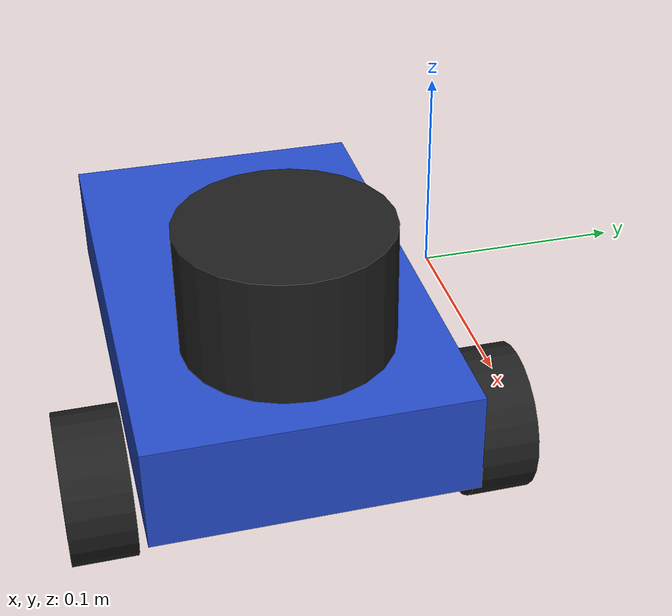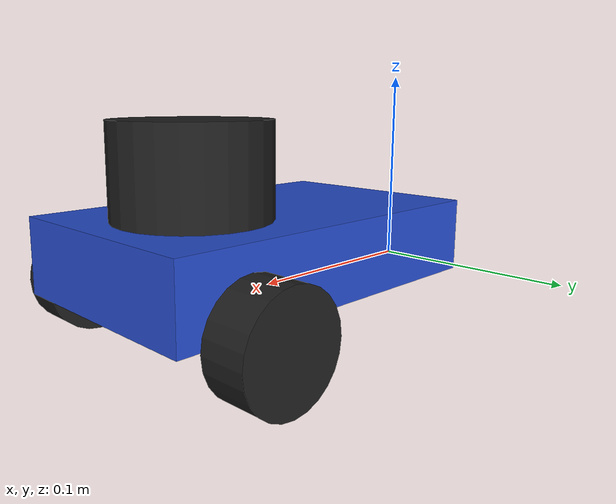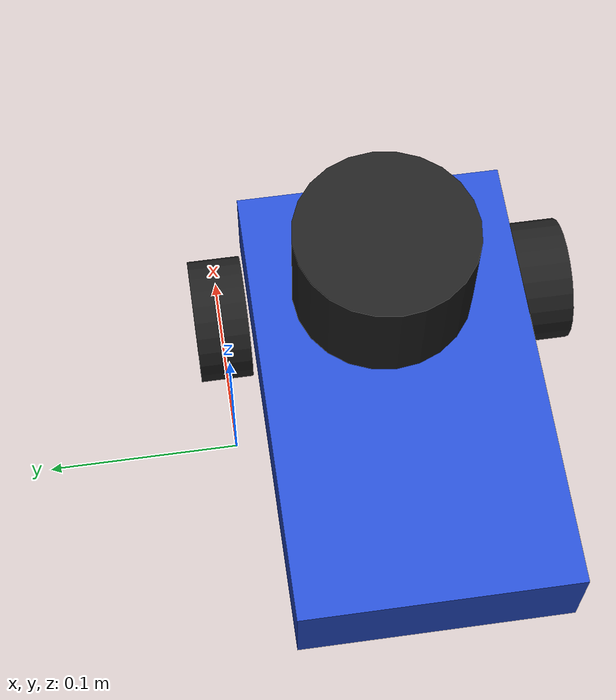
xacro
<?xml version="1.0" ?>
<robot name="bfl_6" xmlns:xacro="http://ros.org/wiki/xacro">
  <xacro:include filename="$(find turtlebot3_description)/urdf/common_properties.xacro"/>
  <xacro:include filename="$(find dharmendra_model)/gazebo/bfl_6/bfl_6_update.gazebo"/>

  <link name= "base_footprint" />

  <joint name="base_joint" type="fixed">
    <parent link="base_footprint"/>
    <child link="base_link"/>
    <origin xyz="0.04061 -0.0922  -0.0155" rpy="0 0 0"/>
  </joint>

  <link name="base_link">
    <inertial>
      <mass value="13"/>
      <origin xyz="0 0 0" rpy="0 0 0"/>
      <inertia ixx="0.126294" ixy="0" ixz="0" iyy="0.0334995" iyz="0" izz="0.157301"/>
    </inertial>
    <collision>
      <origin xyz="-0.02259 -0.0007   0.0075" rpy="0 0 0"/>
      <geometry>
        <box size="0.25 0.15 0.05"/>
      </geometry>
    </collision>
    <visual>
      <origin xyz="-0.02259 -0.0007   0.0075" rpy="0 0 0"/>
      <geometry>
        <box size="0.25 0.15 0.05"/>
      </geometry>
    </visual>
  </link>

  <joint name="left_wheel_joint" type="continuous">
    <parent link="base_link"/>
    <child link="left_wheel_link"/>
    <origin xyz="0.05496  0.09169 -0.0175" rpy="1.5708 0     0"/>
    <axis xyz="0 0 1"/>
    <limit lower="-1.79769e+308" upper="1.79769e+308" effort="-1.0" velocity="-1.0"/>
  </joint>

  <link name="left_wheel_link">
    <inertial>
      <mass value="2.8498940e-02"/>
      <origin xyz="0 0 0" rpy="0 0 0"/>
      <inertia ixx="0.145833" ixy="0" ixz="0" iyy="0.145833" iyz="0" izz="0.125"/>
    </inertial>
    <collision>
      <origin xyz="0 0 0" rpy="0 0 0"/>
      <geometry>
        <cylinder radius="0.035" length="0.03"/>
      </geometry>
    </collision>
    <visual>
      <origin xyz="0 0 0" rpy="0 0 0"/>
      <geometry>
        <cylinder radius="0.035" length="0.03"/>
      </geometry>
    </visual>
  </link>

  <joint name="right_wheel_joint" type="continuous">
    <parent link="base_link"/>
    <child link="right_wheel_link"/>
    <origin xyz="0.05496 -0.0936  -0.0175" rpy="1.5708 0     0"/>
    <axis xyz="0 0 1"/>
    <limit lower="-1.79769e+308" upper="1.79769e+308" effort="-1.0" velocity="-1.0"/>
  </joint>

  <link name="right_wheel_link">
    <inertial>
      <mass value="2.8498940e-02"/>
      <origin xyz="0 0 0" rpy="0 0 0"/>
      <inertia ixx="0.145833" ixy="0" ixz="0" iyy="0.145833" iyz="0" izz="0.125"/>
    </inertial>
    <collision>
      <origin xyz="0 0 0" rpy="0 0 0"/>
      <geometry>
        <cylinder radius="0.035" length="0.03"/>
      </geometry>
    </collision>
    <visual>
      <origin xyz="0 0 0" rpy="0 0 0"/>
      <geometry>
        <cylinder radius="0.035" length="0.03"/>
      </geometry>
    </visual>
  </link>

  <joint name="castor_wheel_joint" type="fixed">
    <parent link="base_link"/>
    <child link="castor_wheel_link"/>
    <origin xyz="-0.1223   0.00071 -0.035" rpy="0 0 0"/>
    <axis xyz="0 0 0"/>
    <limit lower="0" upper="0" effort="0" velocity="0"/>
  </joint>

  <link name="castor_wheel_link">
    <inertial>
      <mass value="0.005"/>
      <origin xyz="0 0 0" rpy="0 0 0"/>
      <inertia ixx="0.1" ixy="0" ixz="0" iyy="0.1" iyz="0" izz="0.1"/>
    </inertial>
    <collision>
      <origin xyz="0 0 0" rpy="0 0 0"/>
      <geometry>
        <sphere radius="0.0175"/>
      </geometry>
    </collision>
  </link>

  <joint name="lidar_joint" type="fixed">
    <parent link="base_link"/>
    <child link="lidar_link"/>
    <origin xyz="0.03496 0.00189 0.0625" rpy="0 0 0"/>
    <axis xyz="0 0 0"/>
    <limit lower="0" upper="0" effort="0" velocity="0"/>
  </joint>

  <link name="lidar_link">
    <inertial>
      <mass value="0.114"/>
      <origin xyz="0 0 0" rpy="0 0 0"/>
      <inertia ixx="0.145833" ixy="0" ixz="0" iyy="0.145833" iyz="0" izz="0.125"/>
    </inertial>
    <collision>
      <origin xyz="0 0 0" rpy="0 0 0"/>
      <geometry>
        <cylinder radius="0.05" length="0.06"/>
      </geometry>
    </collision>
    <visual>
      <origin xyz="0 0 0" rpy="0 0 0"/>
      <geometry>
        <cylinder radius="0.05" length="0.06"/>
      </geometry>
    </visual>
  </link>

</robot>
